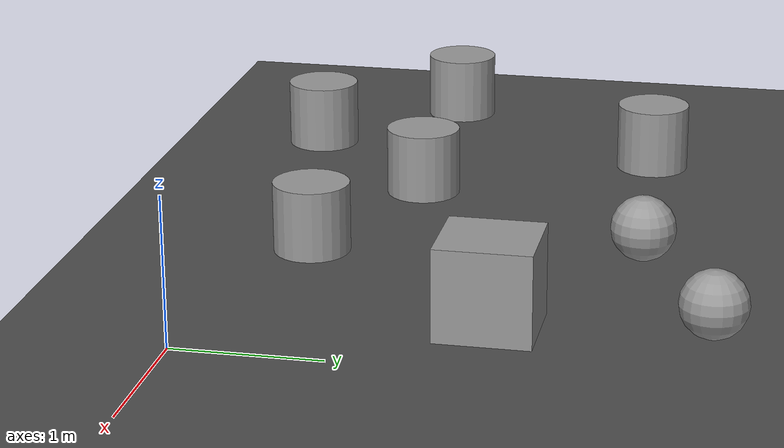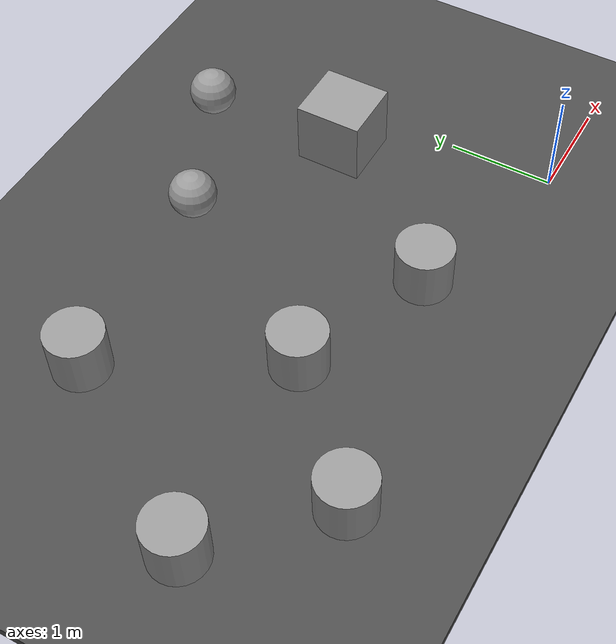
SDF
<sdf version="1.7">
 <world name="default">
  <model name="ground_plane">
   <static>1</static>
   <link name="link">
    <collision name="collision">
     <geometry><plane><normal>0 0 1</normal><size>100 100</size></plane></geometry>
     <surface>
      <contact><collide_bitmask>65535</collide_bitmask></contact>
      <friction><ode><mu>100</mu><mu2>50</mu2></ode></friction>
     </surface>
    </collision>
    <visual name="visual">
     <cast_shadows>0</cast_shadows>
     <geometry><plane><normal>0 0 1</normal><size>100 100</size></plane></geometry>
     <material>
      <script><uri>file://media/materials/scripts/gazebo.material</uri><name>Gazebo/Grey</name></script>
     </material>
    </visual>
   </link>
  </model>
  <model name="asphalt_plane">
   <static>1</static>
   <link name="link">
    <collision name="collision"><geometry><box><size>20 20 0.1</size></box></geometry></collision>
    <visual name="visual">
     <cast_shadows>0</cast_shadows>
     <geometry><box><size>20 20 0.1</size></box></geometry>
     <material>
      <script>
       <uri>model://asphalt_plane/materials/scripts</uri>
       <uri>model://asphalt_plane/materials/textures</uri>
       <name>vrc/asphalt</name>
      </script>
     </material>
    </visual>
   </link>
  </model>
  <model name="unit_sphere_clone_4">
   <pose>-1.9411 2.72823 0.273643 0 -0 0</pose>
   <link name="link">
    <inertial>
     <mass>1</mass>
     <inertia><ixx>0.1</ixx><ixy>0</ixy><ixz>0</ixz><iyy>0.1</iyy><iyz>0</iyz><izz>0.1</izz></inertia>
    </inertial>
    <collision name="collision"><geometry><sphere><radius>0.223643</radius></sphere></geometry></collision>
    <visual name="visual">
     <geometry><sphere><radius>0.223643</radius></sphere></geometry>
     <material>
      <script><name>Gazebo/Grey</name><uri>file://media/materials/scripts/gazebo.material</uri></script>
     </material>
    </visual>
   </link>
  </model>
  <model name="unit_sphere_clone_11">
   <pose>-0.698112 3.29968 0.273643 0 -0 0</pose>
   <link name="link">
    <inertial>
     <mass>1</mass>
     <inertia><ixx>0.1</ixx><ixy>0</ixy><ixz>0</ixz><iyy>0.1</iyy><iyz>0</iyz><izz>0.1</izz></inertia>
    </inertial>
    <collision name="collision"><geometry><sphere><radius>0.223643</radius></sphere></geometry></collision>
    <visual name="visual">
     <geometry><sphere><radius>0.223643</radius></sphere></geometry>
     <material>
      <script><name>Gazebo/Grey</name><uri>file://media/materials/scripts/gazebo.material</uri></script>
     </material>
    </visual>
   </link>
  </model>
  <model name="unit_cylinder">
   <pose>-3.88535 2.58839 0.294796 -0 -0 -5.3e-05</pose>
   <link name="link">
    <inertial>
     <mass>1</mass>
     <inertia><ixx>0.145833</ixx><ixy>0</ixy><ixz>0</ixz><iyy>0.145833</iyy><iyz>0</iyz><izz>0.125</izz></inertia>
    </inertial>
    <collision name="collision">
     <geometry><cylinder><radius>0.264047</radius><length>0.48967</length></cylinder></geometry>
    </collision>
    <visual name="visual">
     <geometry><cylinder><radius>0.264047</radius><length>0.48967</length></cylinder></geometry>
     <material>
      <script><name>Gazebo/Grey</name><uri>file://media/materials/scripts/gazebo.material</uri></script>
     </material>
    </visual>
   </link>
  </model>
  <model name="unit_cylinder_clone">
   <pose>-4 0 0.294835 -0 -0 -5.3e-05</pose>
   <link name="link">
    <inertial>
     <mass>1</mass>
     <inertia><ixx>0.145833</ixx><ixy>0</ixy><ixz>0</ixz><iyy>0.145833</iyy><iyz>0</iyz><izz>0.125</izz></inertia>
    </inertial>
    <collision name="collision">
     <geometry><cylinder><radius>0.264047</radius><length>0.48967</length></cylinder></geometry>
    </collision>
    <visual name="visual">
     <geometry><cylinder><radius>0.264047</radius><length>0.48967</length></cylinder></geometry>
     <material>
      <script><name>Gazebo/Grey</name><uri>file://media/materials/scripts/gazebo.material</uri></script>
     </material>
    </visual>
   </link>
  </model>
  <model name="unit_cylinder_clone_0">
   <pose>-3 1 0.294796 -0 -0 -5.3e-05</pose>
   <link name="link">
    <inertial>
     <mass>1</mass>
     <inertia><ixx>0.145833</ixx><ixy>0</ixy><ixz>0</ixz><iyy>0.145833</iyy><iyz>0</iyz><izz>0.125</izz></inertia>
    </inertial>
    <collision name="collision">
     <geometry><cylinder><radius>0.264047</radius><length>0.48967</length></cylinder></geometry>
    </collision>
    <visual name="visual">
     <geometry><cylinder><radius>0.264047</radius><length>0.48967</length></cylinder></geometry>
     <material>
      <script><name>Gazebo/Grey</name><uri>file://media/materials/scripts/gazebo.material</uri></script>
     </material>
    </visual>
   </link>
  </model>
  <model name="unit_cylinder_clone_1">
   <pose>-1.69363 0.491632 0.294796 -0 -0 -5.3e-05</pose>
   <link name="link">
    <inertial>
     <mass>1</mass>
     <inertia><ixx>0.145833</ixx><ixy>0</ixy><ixz>0</ixz><iyy>0.145833</iyy><iyz>0</iyz><izz>0.125</izz></inertia>
    </inertial>
    <collision name="collision">
     <geometry><cylinder><radius>0.264047</radius><length>0.48967</length></cylinder></geometry>
    </collision>
    <visual name="visual">
     <geometry><cylinder><radius>0.264047</radius><length>0.48967</length></cylinder></geometry>
     <material>
      <script><name>Gazebo/Grey</name><uri>file://media/materials/scripts/gazebo.material</uri></script>
     </material>
    </visual>
   </link>
  </model>
  <model name="unit_cylinder_clone_16">
   <pose>-4.94241 0.924862 0.294796 -0 -0 -5.3e-05</pose>
   <link name="link">
    <inertial>
     <mass>1</mass>
     <inertia><ixx>0.145833</ixx><ixy>0</ixy><ixz>0</ixz><iyy>0.145833</iyy><iyz>0</iyz><izz>0.125</izz></inertia>
    </inertial>
    <collision name="collision">
     <geometry><cylinder><radius>0.264047</radius><length>0.48967</length></cylinder></geometry>
    </collision>
    <visual name="visual">
     <geometry><cylinder><radius>0.264047</radius><length>0.48967</length></cylinder></geometry>
     <material>
      <script><name>Gazebo/Grey</name><uri>file://media/materials/scripts/gazebo.material</uri></script>
     </material>
    </visual>
   </link>
  </model>
  <model name="unit_box_1">
   <pose>-0.57257 1.9182 0.359388 1e-06 -0 0</pose>
   <link name="link">
    <inertial>
     <mass>1</mass>
     <inertia>
      <ixx>0.166667</ixx>
      <ixy>0</ixy>
      <ixz>0</ixz>
      <iyy>0.166667</iyy>
      <iyz>0</iyz>
      <izz>0.166667</izz>
     </inertia>
    </inertial>
    <collision name="collision">
     <geometry><box><size>0.600212 0.630384 0.618775</size></box></geometry>
    </collision>
    <visual name="visual">
     <geometry><box><size>0.600212 0.630384 0.618775</size></box></geometry>
     <material>
      <script><name>Gazebo/Grey</name><uri>file://media/materials/scripts/gazebo.material</uri></script>
     </material>
    </visual>
   </link>
  </model>
 </world>
</sdf>
